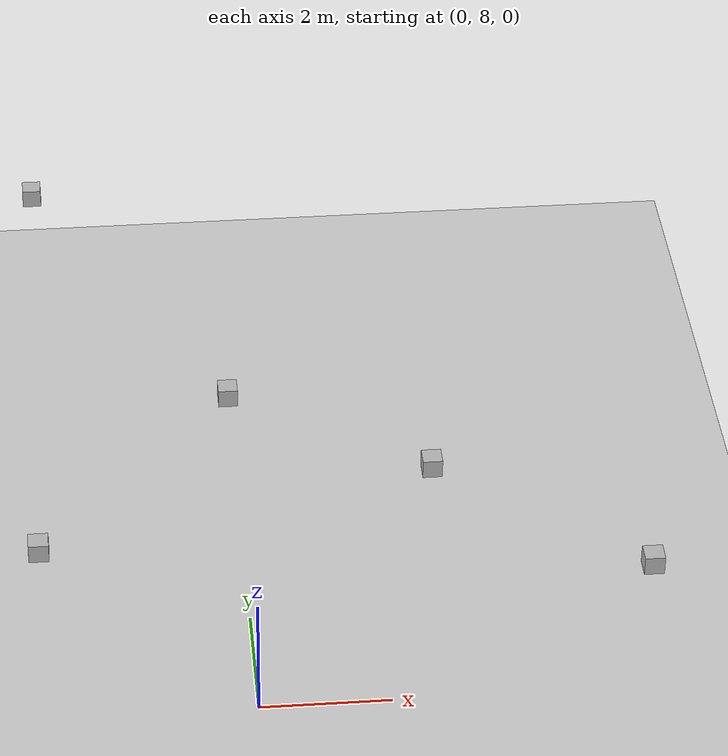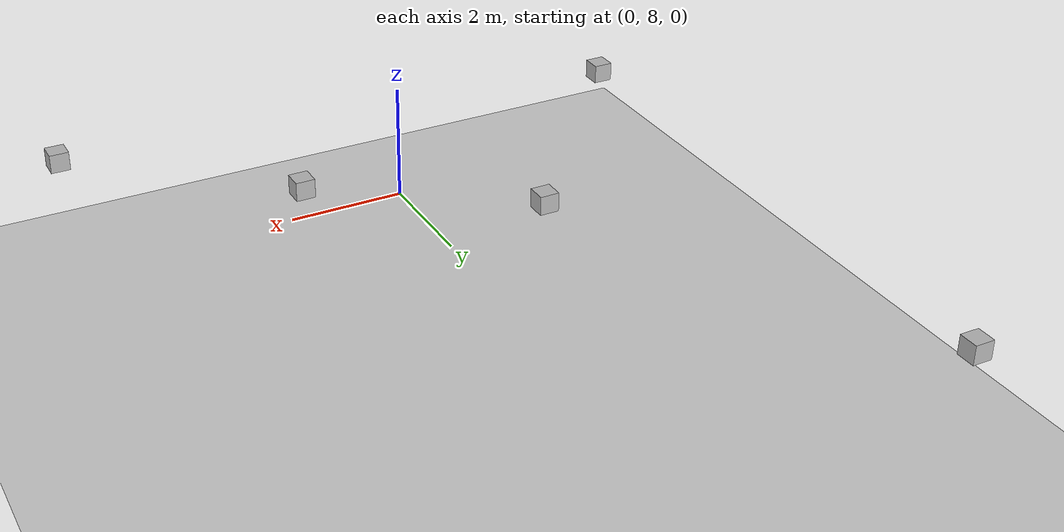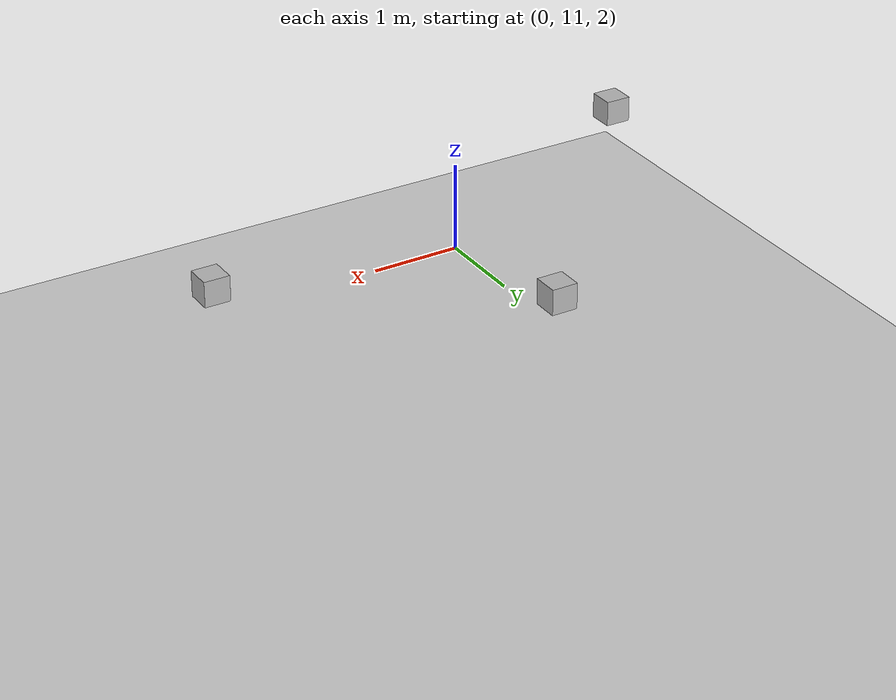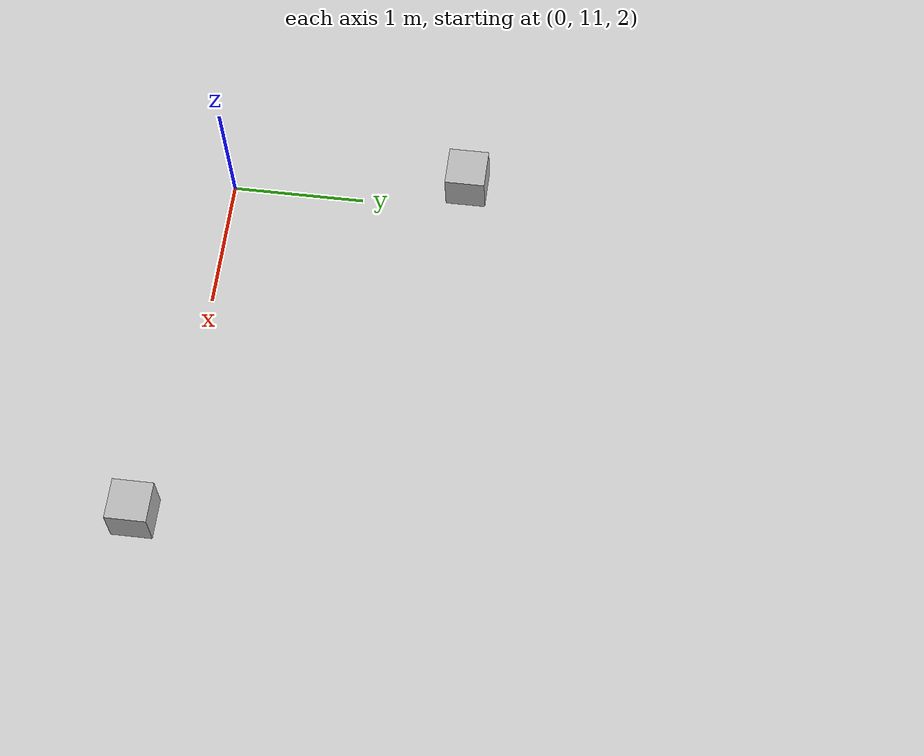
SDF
<?xml version="1.0" ?>
<sdf version="1.4">

  <world name="default">
    <include>
      <uri>model://ground_plane</uri>
    </include>

    <!-- Global light source -->
    <include>
      <uri>model://sun</uri>
    </include>
    <include>
      <uri>model://cube</uri>
      <pose>-0.15 0.3 2 0 0 0</pose>
    </include>

    <!-- Focus camera on tall pendulum -->
    <gui fullscreen='0'>
      <camera name='user_camera'>
        <pose>4.927360 -4.376610 3.740080 0.000000 0.275643 2.356190</pose>
        <view_controller>orbit</view_controller>
      </camera>
    </gui>

  </world>
</sdf>

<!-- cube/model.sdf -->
<sdf version="1.5">
    <model name="cube">
        <static>true</static>
        <link name="link">
            <collision name="collision1">
                <pose>0 12.5 0.1 0 0 0</pose>
                <geometry>
                    <mesh>
                        <uri>model://cube/meshes/cube.dae</uri>
                    </mesh>
                </geometry>
            </collision>
            <visual name="visual1">

              <pose>0 12.5 0.1 0 0 0</pose>
              <geometry>
              <mesh>
                 <uri>model://cube/meshes/cube.dae</uri>
              </mesh>
              </geometry>

              <material>
                  <script>
                      <uri>model://cube/materials/scripts</uri>
                      <uri>model://cube/materials/textures</uri>
                      <name>cubeMat/Diffuse</name>
                  </script>
              </material>
             </visual>

             <collision name="collision2">
                <pose>3 10.5 0.1 0 0 0</pose>
                <geometry>
                    <mesh>
                        <uri>model://cube/meshes/cube.dae</uri>
                    </mesh>
                </geometry>
            </collision>
            <visual name="visual2">

              <pose>3 10.5 0.1 0 0 0</pose>
              <geometry>
              <mesh>
                 <uri>model://cube/meshes/cube.dae</uri>
              </mesh>
              </geometry>

              <material>
                  <script>
                      <uri>model://cube/materials/scripts</uri>
                      <uri>model://cube/materials/textures</uri>
                      <name>cubeMat/Diffuse</name>
                  </script>
              </material>
             </visual>

             <collision name="collision3">
                <pose>-3 9 0.1 0 0 0</pose>
                <geometry>
                    <mesh>
                        <uri>model://cube/meshes/cube.dae</uri>
                    </mesh>
                </geometry>
            </collision>
            <visual name="visual3">

              <pose>-3 9 0.1 0 0 0</pose>
              <geometry>
              <mesh>
                 <uri>model://cube/meshes/cube.dae</uri>
              </mesh>
              </geometry>

              <material>
                  <script>
                      <uri>model://cube/materials/scripts</uri>
                      <uri>model://cube/materials/textures</uri>
                      <name>cubeMat/Diffuse</name>
                  </script>
              </material>
             </visual>

             <collision name="collision4">
                <pose>6 8 0.1 0 0 0</pose>
                <geometry>
                    <mesh>
                        <uri>model://cube/meshes/cube.dae</uri>
                    </mesh>
                </geometry>
            </collision>
            <visual name="visual4">

              <pose>6 8 0.1 0 0 0</pose>
              <geometry>
              <mesh>
                 <uri>model://cube/meshes/cube.dae</uri>
              </mesh>
              </geometry>

              <material>
                  <script>
                      <uri>model://cube/materials/scripts</uri>
                      <uri>model://cube/materials/textures</uri>
                      <name>cubeMat/Diffuse</name>
                  </script>
              </material>
             </visual>

             <collision name="collision5">
                <pose>-3 18.3 0.1 0 0 0</pose>
                <geometry>
                    <mesh>
                        <uri>model://cube/meshes/cube.dae</uri>
                    </mesh>
                </geometry>
            </collision>
            <visual name="visual5">

              <pose>-3 18.3 0.1 0 0 0</pose>
              <geometry>
              <mesh>
                 <uri>model://cube/meshes/cube.dae</uri>
              </mesh>
              </geometry>

              <material>
                  <script>
                      <uri>model://cube/materials/scripts</uri>
                      <uri>model://cube/materials/textures</uri>
                      <name>cubeMat/Diffuse</name>
                  </script>
              </material>
             </visual>
        </link>
    </model>
</sdf>
